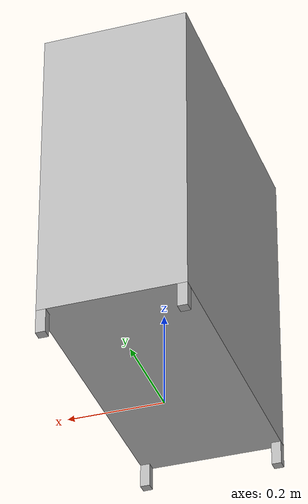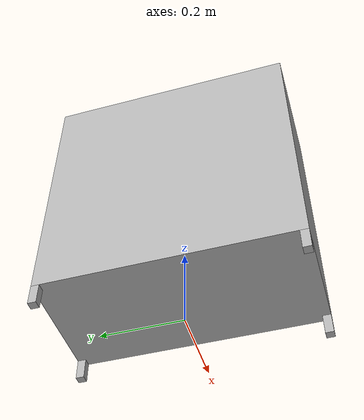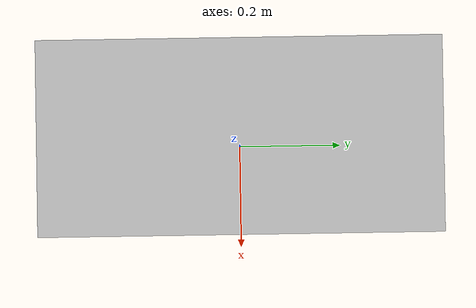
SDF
<?xml version="1.0"?>
<sdf version="1.6">
  <model name="rgo2019/cabinet">
    <link name="1_link">
      <collision name="1_col">
        <geometry>
          <box>
            <size/>
          </box>
        </geometry>
        <name>1</name>
      </collision>
      <visual name="1_vis">
        <geometry>
          <box>
            <size>0.3 0.62 0.65</size>
          </box>
        </geometry>
        <name>1</name>
      </visual>
      <pose>0.0 0.0 0.375 0 0 0</pose>
      <name>1</name>
    </link>
    <link name="2_link">
      <collision name="2_col">
        <geometry>
          <box>
            <size>0.02 0.02 0.05</size>
          </box>
        </geometry>
        <name>2</name>
      </collision>
      <visual name="2_vis">
        <geometry>
          <box>
            <size>0.02 0.02 0.05</size>
          </box>
        </geometry>
        <name>2</name>
      </visual>
      <pose>-0.14 -0.3 0.025 0 0 0</pose>
      <name>2</name>
    </link>
    <link name="3_link">
      <collision name="3_col">
        <geometry>
          <box>
            <size>0.02 0.02 0.05</size>
          </box>
        </geometry>
        <name>3</name>
      </collision>
      <visual name="3_vis">
        <geometry>
          <box>
            <size>0.02 0.02 0.05</size>
          </box>
        </geometry>
        <name>3</name>
      </visual>
      <pose>-0.14 0.3 0.025 0 0 0</pose>
      <name>3</name>
    </link>
    <link name="4_link">
      <collision name="4_col">
        <geometry>
          <box>
            <size>0.02 0.02 0.05</size>
          </box>
        </geometry>
        <name>4</name>
      </collision>
      <visual name="4_vis">
        <geometry>
          <box>
            <size>0.02 0.02 0.05</size>
          </box>
        </geometry>
        <name>4</name>
      </visual>
      <pose>0.14 -0.3 0.025 0 0 0</pose>
      <name>4</name>
    </link>
    <link name="5_link">
      <collision name="5_col">
        <geometry>
          <box>
            <size>0.02 0.02 0.05</size>
          </box>
        </geometry>
        <name>5</name>
      </collision>
      <visual name="5_vis">
        <geometry>
          <box>
            <size>0.02 0.02 0.05</size>
          </box>
        </geometry>
        <name>5</name>
      </visual>
      <pose>0.14 0.3 0.025 0 0 0</pose>
      <name>5</name>
    </link>
    <link name="on_top_of">
      <virtual_volume name="on_top_of_vv">
        <geometry>
          <box>
            <size>0.24 0.6 0.25</size>
          </box>
        </geometry>
        <pose>0.0 0.0 0.845 0 0 0</pose>
        <name>on_top_of</name>
      </virtual_volume>
      <name>on_top_of</name>
    </link>
    <link name="in_front_of">
      <virtual_volume name="in_front_of_vv">
        <geometry>
          <box>
            <size>0.2 0.2 0.01</size>
          </box>
        </geometry>
        <pose>0.4 0.0 0.005 0 0 0</pose>
        <name>in_front_of</name>
      </virtual_volume>
      <name>in_front_of</name>
    </link>
    <static>true</static>
    <name>rgo2019/cabinet</name>
  </model>
</sdf>
